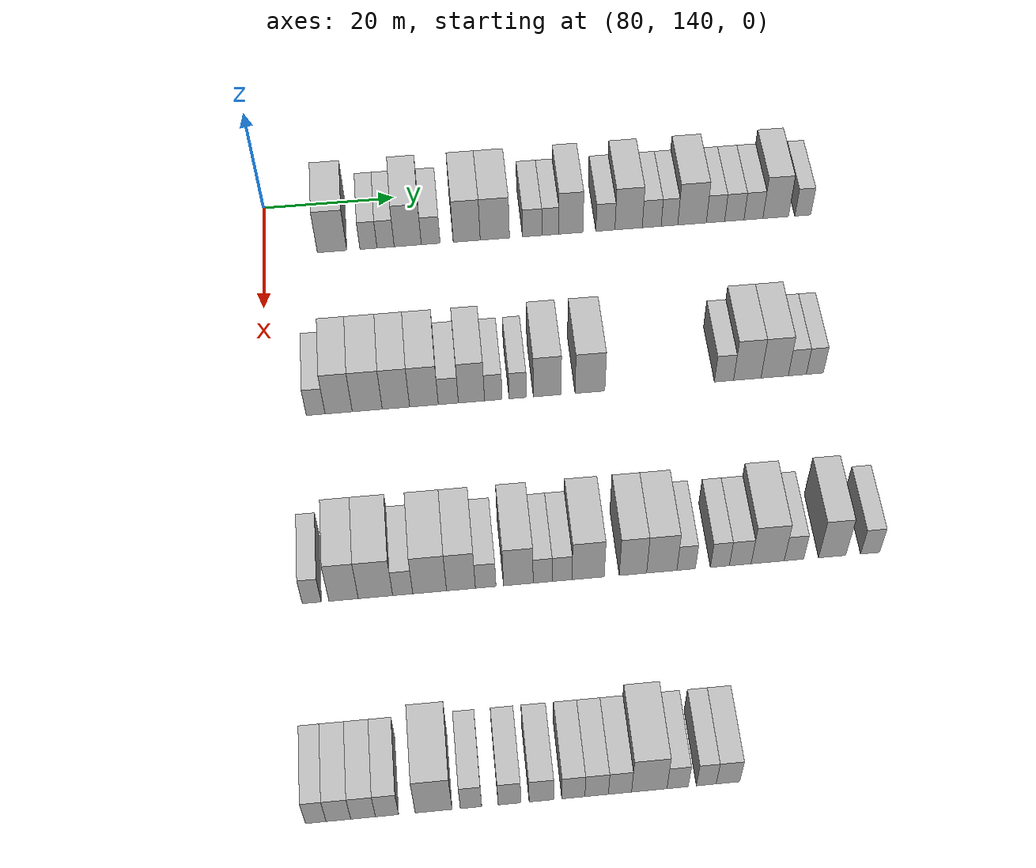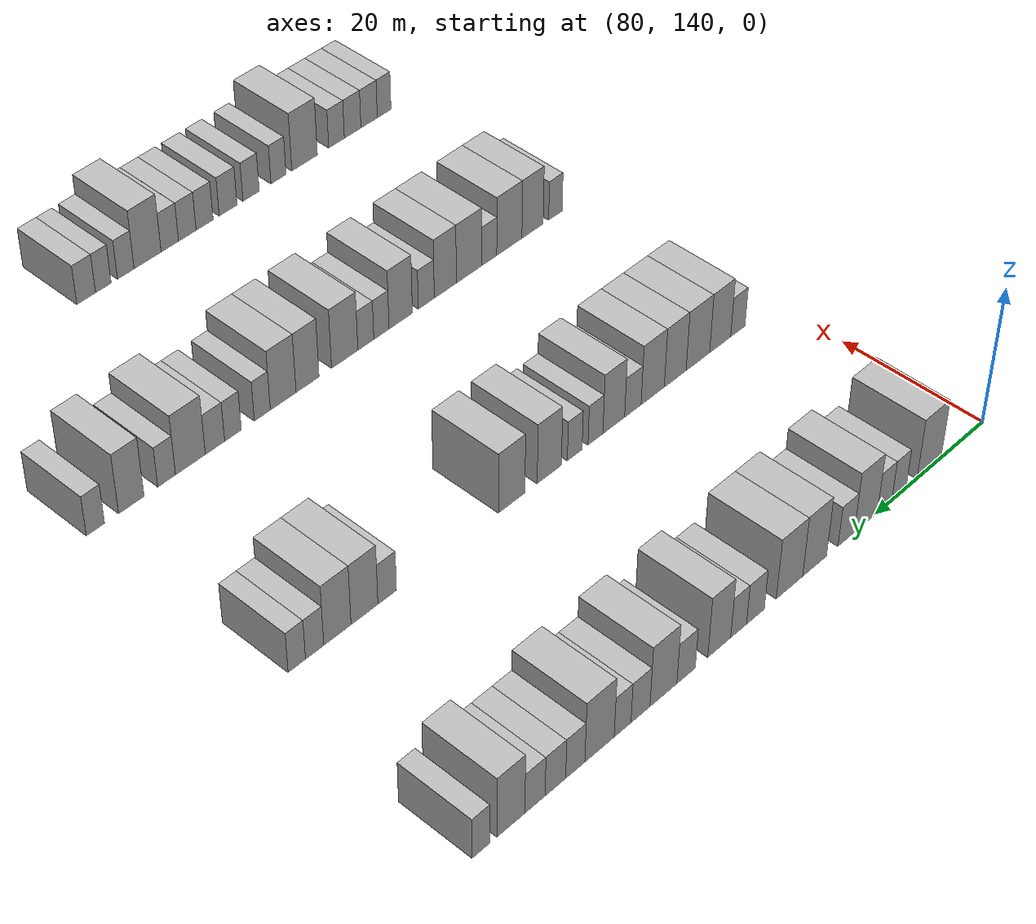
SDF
<sdf version="1.6">
 <world name="default">
  <model name="building_591">
   <static>1</static>
   <pose>85.0000 150.2574 0 0.000000 0.000000 0.000000</pose>
   <link name="link">
    <pose>0 0 4.50 0 0 0</pose>
    <collision name="collision"><geometry><box><size>10.0000 4.4377 9.0000</size></box></geometry></collision>
    <visual name="visual">
     <cast_shadows>0</cast_shadows>
     <geometry><box><size>10.0000 4.4377 9.0000</size></box></geometry>
     <material>
      <script>
       <uri>model://HANNAS_wall/materials/scripts</uri>
       <uri>model://HANNAS_wall/materials/textures</uri>
       <name>vrc/HANNAS_wall</name>
      </script>
     </material>
    </visual>
   </link>
  </model>
  <model name="building_592">
   <static>1</static>
   <pose>85.0000 155.7617 0 0.000000 0.000000 0.000000</pose>
   <link name="link">
    <pose>0 0 3.00 0 0 0</pose>
    <collision name="collision"><geometry><box><size>10.0000 2.5710 6.0000</size></box></geometry></collision>
    <visual name="visual">
     <cast_shadows>0</cast_shadows>
     <geometry><box><size>10.0000 2.5710 6.0000</size></box></geometry>
     <material>
      <script>
       <uri>model://HANNAS_wall/materials/scripts</uri>
       <uri>model://HANNAS_wall/materials/textures</uri>
       <name>vrc/HANNAS_wall</name>
      </script>
     </material>
    </visual>
   </link>
  </model>
  <model name="building_593">
   <static>1</static>
   <pose>85.0000 158.3479 0 0.000000 0.000000 0.000000</pose>
   <link name="link">
    <pose>0 0 3.00 0 0 0</pose>
    <collision name="collision"><geometry><box><size>10.0000 2.6015 6.0000</size></box></geometry></collision>
    <visual name="visual">
     <cast_shadows>0</cast_shadows>
     <geometry><box><size>10.0000 2.6015 6.0000</size></box></geometry>
     <material>
      <script>
       <uri>model://HANNAS_wall/materials/scripts</uri>
       <uri>model://HANNAS_wall/materials/textures</uri>
       <name>vrc/HANNAS_wall</name>
      </script>
     </material>
    </visual>
   </link>
  </model>
  <model name="building_594">
   <static>1</static>
   <pose>85.0000 161.6995 0 0.000000 0.000000 0.000000</pose>
   <link name="link">
    <pose>0 0 4.50 0 0 0</pose>
    <collision name="collision"><geometry><box><size>10.0000 4.1016 9.0000</size></box></geometry></collision>
    <visual name="visual">
     <cast_shadows>0</cast_shadows>
     <geometry><box><size>10.0000 4.1016 9.0000</size></box></geometry>
     <material>
      <script>
       <uri>model://HANNAS_wall/materials/scripts</uri>
       <uri>model://HANNAS_wall/materials/textures</uri>
       <name>vrc/HANNAS_wall</name>
      </script>
     </material>
    </visual>
   </link>
  </model>
  <model name="building_595">
   <static>1</static>
   <pose>85.0000 165.1764 0 0.000000 0.000000 0.000000</pose>
   <link name="link">
    <pose>0 0 3.00 0 0 0</pose>
    <collision name="collision"><geometry><box><size>10.0000 2.8522 6.0000</size></box></geometry></collision>
    <visual name="visual">
     <cast_shadows>0</cast_shadows>
     <geometry><box><size>10.0000 2.8522 6.0000</size></box></geometry>
     <material>
      <script>
       <uri>model://HANNAS_wall/materials/scripts</uri>
       <uri>model://HANNAS_wall/materials/textures</uri>
       <name>vrc/HANNAS_wall</name>
      </script>
     </material>
    </visual>
   </link>
  </model>
  <model name="building_596">
   <static>1</static>
   <pose>85.0000 170.6516 0 0.000000 0.000000 0.000000</pose>
   <link name="link">
    <pose>0 0 4.50 0 0 0</pose>
    <collision name="collision"><geometry><box><size>10.0000 4.0983 9.0000</size></box></geometry></collision>
    <visual name="visual">
     <cast_shadows>0</cast_shadows>
     <geometry><box><size>10.0000 4.0983 9.0000</size></box></geometry>
     <material>
      <script>
       <uri>model://HANNAS_wall/materials/scripts</uri>
       <uri>model://HANNAS_wall/materials/textures</uri>
       <name>vrc/HANNAS_wall</name>
      </script>
     </material>
    </visual>
   </link>
  </model>
  <model name="building_597">
   <static>1</static>
   <pose>85.0000 174.9315 0 0.000000 0.000000 0.000000</pose>
   <link name="link">
    <pose>0 0 4.50 0 0 0</pose>
    <collision name="collision"><geometry><box><size>10.0000 4.4615 9.0000</size></box></geometry></collision>
    <visual name="visual">
     <cast_shadows>0</cast_shadows>
     <geometry><box><size>10.0000 4.4615 9.0000</size></box></geometry>
     <material>
      <script>
       <uri>model://HANNAS_wall/materials/scripts</uri>
       <uri>model://HANNAS_wall/materials/textures</uri>
       <name>vrc/HANNAS_wall</name>
      </script>
     </material>
    </visual>
   </link>
  </model>
  <model name="building_598">
   <static>1</static>
   <pose>85.0000 180.6359 0 0.000000 0.000000 0.000000</pose>
   <link name="link">
    <pose>0 0 3.00 0 0 0</pose>
    <collision name="collision"><geometry><box><size>10.0000 2.9473 6.0000</size></box></geometry></collision>
    <visual name="visual">
     <cast_shadows>0</cast_shadows>
     <geometry><box><size>10.0000 2.9473 6.0000</size></box></geometry>
     <material>
      <script>
       <uri>model://HANNAS_wall/materials/scripts</uri>
       <uri>model://HANNAS_wall/materials/textures</uri>
       <name>vrc/HANNAS_wall</name>
      </script>
     </material>
    </visual>
   </link>
  </model>
  <model name="building_599">
   <static>1</static>
   <pose>85.0000 183.4014 0 0.000000 0.000000 0.000000</pose>
   <link name="link">
    <pose>0 0 3.00 0 0 0</pose>
    <collision name="collision"><geometry><box><size>10.0000 2.5837 6.0000</size></box></geometry></collision>
    <visual name="visual">
     <cast_shadows>0</cast_shadows>
     <geometry><box><size>10.0000 2.5837 6.0000</size></box></geometry>
     <material>
      <script>
       <uri>model://HANNAS_wall/materials/scripts</uri>
       <uri>model://HANNAS_wall/materials/textures</uri>
       <name>vrc/HANNAS_wall</name>
      </script>
     </material>
    </visual>
   </link>
  </model>
  <model name="building_600">
   <static>1</static>
   <pose>85.0000 186.5445 0 0.000000 0.000000 0.000000</pose>
   <link name="link">
    <pose>0 0 4.50 0 0 0</pose>
    <collision name="collision"><geometry><box><size>10.0000 3.7025 9.0000</size></box></geometry></collision>
    <visual name="visual">
     <cast_shadows>0</cast_shadows>
     <geometry><box><size>10.0000 3.7025 9.0000</size></box></geometry>
     <material>
      <script>
       <uri>model://HANNAS_wall/materials/scripts</uri>
       <uri>model://HANNAS_wall/materials/textures</uri>
       <name>vrc/HANNAS_wall</name>
      </script>
     </material>
    </visual>
   </link>
  </model>
  <model name="building_601">
   <static>1</static>
   <pose>85.0000 191.8550 0 0.000000 0.000000 0.000000</pose>
   <link name="link">
    <pose>0 0 3.00 0 0 0</pose>
    <collision name="collision"><geometry><box><size>10.0000 2.9185 6.0000</size></box></geometry></collision>
    <visual name="visual">
     <cast_shadows>0</cast_shadows>
     <geometry><box><size>10.0000 2.9185 6.0000</size></box></geometry>
     <material>
      <script>
       <uri>model://HANNAS_wall/materials/scripts</uri>
       <uri>model://HANNAS_wall/materials/textures</uri>
       <name>vrc/HANNAS_wall</name>
      </script>
     </material>
    </visual>
   </link>
  </model>
  <model name="building_602">
   <static>1</static>
   <pose>85.0000 195.4184 0 0.000000 0.000000 0.000000</pose>
   <link name="link">
    <pose>0 0 4.50 0 0 0</pose>
    <collision name="collision"><geometry><box><size>10.0000 4.2084 9.0000</size></box></geometry></collision>
    <visual name="visual">
     <cast_shadows>0</cast_shadows>
     <geometry><box><size>10.0000 4.2084 9.0000</size></box></geometry>
     <material>
      <script>
       <uri>model://HANNAS_wall/materials/scripts</uri>
       <uri>model://HANNAS_wall/materials/textures</uri>
       <name>vrc/HANNAS_wall</name>
      </script>
     </material>
    </visual>
   </link>
  </model>
  <model name="building_603">
   <static>1</static>
   <pose>85.0000 198.9815 0 0.000000 0.000000 0.000000</pose>
   <link name="link">
    <pose>0 0 3.00 0 0 0</pose>
    <collision name="collision"><geometry><box><size>10.0000 2.9178 6.0000</size></box></geometry></collision>
    <visual name="visual">
     <cast_shadows>0</cast_shadows>
     <geometry><box><size>10.0000 2.9178 6.0000</size></box></geometry>
     <material>
      <script>
       <uri>model://HANNAS_wall/materials/scripts</uri>
       <uri>model://HANNAS_wall/materials/textures</uri>
       <name>vrc/HANNAS_wall</name>
      </script>
     </material>
    </visual>
   </link>
  </model>
  <model name="building_604">
   <static>1</static>
   <pose>85.0000 201.7214 0 0.000000 0.000000 0.000000</pose>
   <link name="link">
    <pose>0 0 3.00 0 0 0</pose>
    <collision name="collision"><geometry><box><size>10.0000 2.5618 6.0000</size></box></geometry></collision>
    <visual name="visual">
     <cast_shadows>0</cast_shadows>
     <geometry><box><size>10.0000 2.5618 6.0000</size></box></geometry>
     <material>
      <script>
       <uri>model://HANNAS_wall/materials/scripts</uri>
       <uri>model://HANNAS_wall/materials/textures</uri>
       <name>vrc/HANNAS_wall</name>
      </script>
     </material>
    </visual>
   </link>
  </model>
  <model name="building_605">
   <static>1</static>
   <pose>85.0000 205.2070 0 0.000000 0.000000 0.000000</pose>
   <link name="link">
    <pose>0 0 4.50 0 0 0</pose>
    <collision name="collision"><geometry><box><size>10.0000 4.4094 9.0000</size></box></geometry></collision>
    <visual name="visual">
     <cast_shadows>0</cast_shadows>
     <geometry><box><size>10.0000 4.4094 9.0000</size></box></geometry>
     <material>
      <script>
       <uri>model://HANNAS_wall/materials/scripts</uri>
       <uri>model://HANNAS_wall/materials/textures</uri>
       <name>vrc/HANNAS_wall</name>
      </script>
     </material>
    </visual>
   </link>
  </model>
  <model name="building_606">
   <static>1</static>
   <pose>85.0000 208.8326 0 0.000000 0.000000 0.000000</pose>
   <link name="link">
    <pose>0 0 3.00 0 0 0</pose>
    <collision name="collision"><geometry><box><size>10.0000 2.8419 6.0000</size></box></geometry></collision>
    <visual name="visual">
     <cast_shadows>0</cast_shadows>
     <geometry><box><size>10.0000 2.8419 6.0000</size></box></geometry>
     <material>
      <script>
       <uri>model://HANNAS_wall/materials/scripts</uri>
       <uri>model://HANNAS_wall/materials/textures</uri>
       <name>vrc/HANNAS_wall</name>
      </script>
     </material>
    </visual>
   </link>
  </model>
  <model name="building_607">
   <static>1</static>
   <pose>85.0000 211.7533 0 0.000000 0.000000 0.000000</pose>
   <link name="link">
    <pose>0 0 3.00 0 0 0</pose>
    <collision name="collision"><geometry><box><size>10.0000 2.9997 6.0000</size></box></geometry></collision>
    <visual name="visual">
     <cast_shadows>0</cast_shadows>
     <geometry><box><size>10.0000 2.9997 6.0000</size></box></geometry>
     <material>
      <script>
       <uri>model://HANNAS_wall/materials/scripts</uri>
       <uri>model://HANNAS_wall/materials/textures</uri>
       <name>vrc/HANNAS_wall</name>
      </script>
     </material>
    </visual>
   </link>
  </model>
  <model name="building_608">
   <static>1</static>
   <pose>85.0000 214.7210 0 0.000000 0.000000 0.000000</pose>
   <link name="link">
    <pose>0 0 3.00 0 0 0</pose>
    <collision name="collision"><geometry><box><size>10.0000 2.9356 6.0000</size></box></geometry></collision>
    <visual name="visual">
     <cast_shadows>0</cast_shadows>
     <geometry><box><size>10.0000 2.9356 6.0000</size></box></geometry>
     <material>
      <script>
       <uri>model://HANNAS_wall/materials/scripts</uri>
       <uri>model://HANNAS_wall/materials/textures</uri>
       <name>vrc/HANNAS_wall</name>
      </script>
     </material>
    </visual>
   </link>
  </model>
  <model name="building_609">
   <static>1</static>
   <pose>85.0000 218.1767 0 0.000000 0.000000 0.000000</pose>
   <link name="link">
    <pose>0 0 4.50 0 0 0</pose>
    <collision name="collision"><geometry><box><size>10.0000 3.9759 9.0000</size></box></geometry></collision>
    <visual name="visual">
     <cast_shadows>0</cast_shadows>
     <geometry><box><size>10.0000 3.9759 9.0000</size></box></geometry>
     <material>
      <script>
       <uri>model://HANNAS_wall/materials/scripts</uri>
       <uri>model://HANNAS_wall/materials/textures</uri>
       <name>vrc/HANNAS_wall</name>
      </script>
     </material>
    </visual>
   </link>
  </model>
  <model name="building_610">
   <static>1</static>
   <pose>85.0000 222.4064 0 0.000000 0.000000 0.000000</pose>
   <link name="link">
    <pose>0 0 3.00 0 0 0</pose>
    <collision name="collision"><geometry><box><size>10.0000 2.4835 6.0000</size></box></geometry></collision>
    <visual name="visual">
     <cast_shadows>0</cast_shadows>
     <geometry><box><size>10.0000 2.4835 6.0000</size></box></geometry>
     <material>
      <script>
       <uri>model://HANNAS_wall/materials/scripts</uri>
       <uri>model://HANNAS_wall/materials/textures</uri>
       <name>vrc/HANNAS_wall</name>
      </script>
     </material>
    </visual>
   </link>
  </model>
  <model name="building_822">
   <static>1</static>
   <pose>115.0000 147.1738 0 0.000000 0.000000 0.000000</pose>
   <link name="link">
    <pose>0 0 3.00 0 0 0</pose>
    <collision name="collision"><geometry><box><size>10.0000 2.6315 6.0000</size></box></geometry></collision>
    <visual name="visual">
     <cast_shadows>0</cast_shadows>
     <geometry><box><size>10.0000 2.6315 6.0000</size></box></geometry>
     <material>
      <script>
       <uri>model://HANNAS_wall/materials/scripts</uri>
       <uri>model://HANNAS_wall/materials/textures</uri>
       <name>vrc/HANNAS_wall</name>
      </script>
     </material>
    </visual>
   </link>
  </model>
  <model name="building_823">
   <static>1</static>
   <pose>115.0000 150.4013 0 0.000000 0.000000 0.000000</pose>
   <link name="link">
    <pose>0 0 4.50 0 0 0</pose>
    <collision name="collision"><geometry><box><size>10.0000 3.8234 9.0000</size></box></geometry></collision>
    <visual name="visual">
     <cast_shadows>0</cast_shadows>
     <geometry><box><size>10.0000 3.8234 9.0000</size></box></geometry>
     <material>
      <script>
       <uri>model://HANNAS_wall/materials/scripts</uri>
       <uri>model://HANNAS_wall/materials/textures</uri>
       <name>vrc/HANNAS_wall</name>
      </script>
     </material>
    </visual>
   </link>
  </model>
  <model name="building_824">
   <static>1</static>
   <pose>115.0000 154.4237 0 0.000000 0.000000 0.000000</pose>
   <link name="link">
    <pose>0 0 4.50 0 0 0</pose>
    <collision name="collision"><geometry><box><size>10.0000 4.2214 9.0000</size></box></geometry></collision>
    <visual name="visual">
     <cast_shadows>0</cast_shadows>
     <geometry><box><size>10.0000 4.2214 9.0000</size></box></geometry>
     <material>
      <script>
       <uri>model://HANNAS_wall/materials/scripts</uri>
       <uri>model://HANNAS_wall/materials/textures</uri>
       <name>vrc/HANNAS_wall</name>
      </script>
     </material>
    </visual>
   </link>
  </model>
  <model name="building_825">
   <static>1</static>
   <pose>115.0000 158.4674 0 0.000000 0.000000 0.000000</pose>
   <link name="link">
    <pose>0 0 4.50 0 0 0</pose>
    <collision name="collision"><geometry><box><size>10.0000 3.8660 9.0000</size></box></geometry></collision>
    <visual name="visual">
     <cast_shadows>0</cast_shadows>
     <geometry><box><size>10.0000 3.8660 9.0000</size></box></geometry>
     <material>
      <script>
       <uri>model://HANNAS_wall/materials/scripts</uri>
       <uri>model://HANNAS_wall/materials/textures</uri>
       <name>vrc/HANNAS_wall</name>
      </script>
     </material>
    </visual>
   </link>
  </model>
  <model name="building_826">
   <static>1</static>
   <pose>115.0000 162.4238 0 0.000000 0.000000 0.000000</pose>
   <link name="link">
    <pose>0 0 4.50 0 0 0</pose>
    <collision name="collision"><geometry><box><size>10.0000 4.0468 9.0000</size></box></geometry></collision>
    <visual name="visual">
     <cast_shadows>0</cast_shadows>
     <geometry><box><size>10.0000 4.0468 9.0000</size></box></geometry>
     <material>
      <script>
       <uri>model://HANNAS_wall/materials/scripts</uri>
       <uri>model://HANNAS_wall/materials/textures</uri>
       <name>vrc/HANNAS_wall</name>
      </script>
     </material>
    </visual>
   </link>
  </model>
  <model name="building_827">
   <static>1</static>
   <pose>115.0000 165.8641 0 0.000000 0.000000 0.000000</pose>
   <link name="link">
    <pose>0 0 3.00 0 0 0</pose>
    <collision name="collision"><geometry><box><size>10.0000 2.8336 6.0000</size></box></geometry></collision>
    <visual name="visual">
     <cast_shadows>0</cast_shadows>
     <geometry><box><size>10.0000 2.8336 6.0000</size></box></geometry>
     <material>
      <script>
       <uri>model://HANNAS_wall/materials/scripts</uri>
       <uri>model://HANNAS_wall/materials/textures</uri>
       <name>vrc/HANNAS_wall</name>
      </script>
     </material>
    </visual>
   </link>
  </model>
  <model name="building_828">
   <static>1</static>
   <pose>115.0000 169.1370 0 0.000000 0.000000 0.000000</pose>
   <link name="link">
    <pose>0 0 4.50 0 0 0</pose>
    <collision name="collision"><geometry><box><size>10.0000 3.7123 9.0000</size></box></geometry></collision>
    <visual name="visual">
     <cast_shadows>0</cast_shadows>
     <geometry><box><size>10.0000 3.7123 9.0000</size></box></geometry>
     <material>
      <script>
       <uri>model://HANNAS_wall/materials/scripts</uri>
       <uri>model://HANNAS_wall/materials/textures</uri>
       <name>vrc/HANNAS_wall</name>
      </script>
     </material>
    </visual>
   </link>
  </model>
  <model name="building_829">
   <static>1</static>
   <pose>115.0000 172.2430 0 0.000000 0.000000 0.000000</pose>
   <link name="link">
    <pose>0 0 3.00 0 0 0</pose>
    <collision name="collision"><geometry><box><size>10.0000 2.4997 6.0000</size></box></geometry></collision>
    <visual name="visual">
     <cast_shadows>0</cast_shadows>
     <geometry><box><size>10.0000 2.4997 6.0000</size></box></geometry>
     <material>
      <script>
       <uri>model://HANNAS_wall/materials/scripts</uri>
       <uri>model://HANNAS_wall/materials/textures</uri>
       <name>vrc/HANNAS_wall</name>
      </script>
     </material>
    </visual>
   </link>
  </model>
  <model name="building_830">
   <static>1</static>
   <pose>115.0000 175.7149 0 0.000000 0.000000 0.000000</pose>
   <link name="link">
    <pose>0 0 3.00 0 0 0</pose>
    <collision name="collision"><geometry><box><size>10.0000 2.4441 6.0000</size></box></geometry></collision>
    <visual name="visual">
     <cast_shadows>0</cast_shadows>
     <geometry><box><size>10.0000 2.4441 6.0000</size></box></geometry>
     <material>
      <script>
       <uri>model://HANNAS_wall/materials/scripts</uri>
       <uri>model://HANNAS_wall/materials/textures</uri>
       <name>vrc/HANNAS_wall</name>
      </script>
     </material>
    </visual>
   </link>
  </model>
  <model name="building_831">
   <static>1</static>
   <pose>115.0000 179.9132 0 0.000000 0.000000 0.000000</pose>
   <link name="link">
    <pose>0 0 4.50 0 0 0</pose>
    <collision name="collision"><geometry><box><size>10.0000 3.9526 9.0000</size></box></geometry></collision>
    <visual name="visual">
     <cast_shadows>0</cast_shadows>
     <geometry><box><size>10.0000 3.9526 9.0000</size></box></geometry>
     <material>
      <script>
       <uri>model://HANNAS_wall/materials/scripts</uri>
       <uri>model://HANNAS_wall/materials/textures</uri>
       <name>vrc/HANNAS_wall</name>
      </script>
     </material>
    </visual>
   </link>
  </model>
  <model name="building_832">
   <static>1</static>
   <pose>115.0000 186.0097 0 0.000000 0.000000 0.000000</pose>
   <link name="link">
    <pose>0 0 4.50 0 0 0</pose>
    <collision name="collision"><geometry><box><size>10.0000 4.2403 9.0000</size></box></geometry></collision>
    <visual name="visual">
     <cast_shadows>0</cast_shadows>
     <geometry><box><size>10.0000 4.2403 9.0000</size></box></geometry>
     <material>
      <script>
       <uri>model://HANNAS_wall/materials/scripts</uri>
       <uri>model://HANNAS_wall/materials/textures</uri>
       <name>vrc/HANNAS_wall</name>
      </script>
     </material>
    </visual>
   </link>
  </model>
  <model name="building_833">
   <static>1</static>
   <pose>115.0000 205.2660 0 0.000000 0.000000 0.000000</pose>
   <link name="link">
    <pose>0 0 3.00 0 0 0</pose>
    <collision name="collision"><geometry><box><size>10.0000 2.7574 6.0000</size></box></geometry></collision>
    <visual name="visual">
     <cast_shadows>0</cast_shadows>
     <geometry><box><size>10.0000 2.7574 6.0000</size></box></geometry>
     <material>
      <script>
       <uri>model://HANNAS_wall/materials/scripts</uri>
       <uri>model://HANNAS_wall/materials/textures</uri>
       <name>vrc/HANNAS_wall</name>
      </script>
     </material>
    </visual>
   </link>
  </model>
  <model name="building_834">
   <static>1</static>
   <pose>115.0000 208.6268 0 0.000000 0.000000 0.000000</pose>
   <link name="link">
    <pose>0 0 4.50 0 0 0</pose>
    <collision name="collision"><geometry><box><size>10.0000 3.9642 9.0000</size></box></geometry></collision>
    <visual name="visual">
     <cast_shadows>0</cast_shadows>
     <geometry><box><size>10.0000 3.9642 9.0000</size></box></geometry>
     <material>
      <script>
       <uri>model://HANNAS_wall/materials/scripts</uri>
       <uri>model://HANNAS_wall/materials/textures</uri>
       <name>vrc/HANNAS_wall</name>
      </script>
     </material>
    </visual>
   </link>
  </model>
  <model name="building_835">
   <static>1</static>
   <pose>115.0000 212.5867 0 0.000000 0.000000 0.000000</pose>
   <link name="link">
    <pose>0 0 4.50 0 0 0</pose>
    <collision name="collision"><geometry><box><size>10.0000 3.9556 9.0000</size></box></geometry></collision>
    <visual name="visual">
     <cast_shadows>0</cast_shadows>
     <geometry><box><size>10.0000 3.9556 9.0000</size></box></geometry>
     <material>
      <script>
       <uri>model://HANNAS_wall/materials/scripts</uri>
       <uri>model://HANNAS_wall/materials/textures</uri>
       <name>vrc/HANNAS_wall</name>
      </script>
     </material>
    </visual>
   </link>
  </model>
  <model name="building_836">
   <static>1</static>
   <pose>115.0000 215.8741 0 0.000000 0.000000 0.000000</pose>
   <link name="link">
    <pose>0 0 3.00 0 0 0</pose>
    <collision name="collision"><geometry><box><size>10.0000 2.6192 6.0000</size></box></geometry></collision>
    <visual name="visual">
     <cast_shadows>0</cast_shadows>
     <geometry><box><size>10.0000 2.6192 6.0000</size></box></geometry>
     <material>
      <script>
       <uri>model://HANNAS_wall/materials/scripts</uri>
       <uri>model://HANNAS_wall/materials/textures</uri>
       <name>vrc/HANNAS_wall</name>
      </script>
     </material>
    </visual>
   </link>
  </model>
  <model name="building_837">
   <static>1</static>
   <pose>115.0000 218.4202 0 0.000000 0.000000 0.000000</pose>
   <link name="link">
    <pose>0 0 3.00 0 0 0</pose>
    <collision name="collision"><geometry><box><size>10.0000 2.4729 6.0000</size></box></geometry></collision>
    <visual name="visual">
     <cast_shadows>0</cast_shadows>
     <geometry><box><size>10.0000 2.4729 6.0000</size></box></geometry>
     <material>
      <script>
       <uri>model://HANNAS_wall/materials/scripts</uri>
       <uri>model://HANNAS_wall/materials/textures</uri>
       <name>vrc/HANNAS_wall</name>
      </script>
     </material>
    </visual>
   </link>
  </model>
  <model name="building_1052">
   <static>1</static>
   <pose>145.0000 146.0578 0 0.000000 0.000000 0.000000</pose>
   <link name="link">
    <pose>0 0 3.00 0 0 0</pose>
    <collision name="collision"><geometry><box><size>10.0000 2.4564 6.0000</size></box></geometry></collision>
    <visual name="visual">
     <cast_shadows>0</cast_shadows>
     <geometry><box><size>10.0000 2.4564 6.0000</size></box></geometry>
     <material>
      <script>
       <uri>model://HANNAS_wall/materials/scripts</uri>
       <uri>model://HANNAS_wall/materials/textures</uri>
       <name>vrc/HANNAS_wall</name>
      </script>
     </material>
    </visual>
   </link>
  </model>
  <model name="building_1053">
   <static>1</static>
   <pose>145.0000 150.1999 0 0.000000 0.000000 0.000000</pose>
   <link name="link">
    <pose>0 0 4.50 0 0 0</pose>
    <collision name="collision"><geometry><box><size>10.0000 3.8278 9.0000</size></box></geometry></collision>
    <visual name="visual">
     <cast_shadows>0</cast_shadows>
     <geometry><box><size>10.0000 3.8278 9.0000</size></box></geometry>
     <material>
      <script>
       <uri>model://HANNAS_wall/materials/scripts</uri>
       <uri>model://HANNAS_wall/materials/textures</uri>
       <name>vrc/HANNAS_wall</name>
      </script>
     </material>
    </visual>
   </link>
  </model>
  <model name="building_1054">
   <static>1</static>
   <pose>145.0000 154.3550 0 0.000000 0.000000 0.000000</pose>
   <link name="link">
    <pose>0 0 4.50 0 0 0</pose>
    <collision name="collision"><geometry><box><size>10.0000 4.4824 9.0000</size></box></geometry></collision>
    <visual name="visual">
     <cast_shadows>0</cast_shadows>
     <geometry><box><size>10.0000 4.4824 9.0000</size></box></geometry>
     <material>
      <script>
       <uri>model://HANNAS_wall/materials/scripts</uri>
       <uri>model://HANNAS_wall/materials/textures</uri>
       <name>vrc/HANNAS_wall</name>
      </script>
     </material>
    </visual>
   </link>
  </model>
  <model name="building_1055">
   <static>1</static>
   <pose>145.0000 157.9102 0 0.000000 0.000000 0.000000</pose>
   <link name="link">
    <pose>0 0 3.00 0 0 0</pose>
    <collision name="collision"><geometry><box><size>10.0000 2.6281 6.0000</size></box></geometry></collision>
    <visual name="visual">
     <cast_shadows>0</cast_shadows>
     <geometry><box><size>10.0000 2.6281 6.0000</size></box></geometry>
     <material>
      <script>
       <uri>model://HANNAS_wall/materials/scripts</uri>
       <uri>model://HANNAS_wall/materials/textures</uri>
       <name>vrc/HANNAS_wall</name>
      </script>
     </material>
    </visual>
   </link>
  </model>
  <model name="building_1056">
   <static>1</static>
   <pose>145.0000 161.4334 0 0.000000 0.000000 0.000000</pose>
   <link name="link">
    <pose>0 0 4.50 0 0 0</pose>
    <collision name="collision"><geometry><box><size>10.0000 4.4183 9.0000</size></box></geometry></collision>
    <visual name="visual">
     <cast_shadows>0</cast_shadows>
     <geometry><box><size>10.0000 4.4183 9.0000</size></box></geometry>
     <material>
      <script>
       <uri>model://HANNAS_wall/materials/scripts</uri>
       <uri>model://HANNAS_wall/materials/textures</uri>
       <name>vrc/HANNAS_wall</name>
      </script>
     </material>
    </visual>
   </link>
  </model>
  <model name="building_1057">
   <static>1</static>
   <pose>145.0000 165.5338 0 0.000000 0.000000 0.000000</pose>
   <link name="link">
    <pose>0 0 4.50 0 0 0</pose>
    <collision name="collision"><geometry><box><size>10.0000 3.7824 9.0000</size></box></geometry></collision>
    <visual name="visual">
     <cast_shadows>0</cast_shadows>
     <geometry><box><size>10.0000 3.7824 9.0000</size></box></geometry>
     <material>
      <script>
       <uri>model://HANNAS_wall/materials/scripts</uri>
       <uri>model://HANNAS_wall/materials/textures</uri>
       <name>vrc/HANNAS_wall</name>
      </script>
     </material>
    </visual>
   </link>
  </model>
  <model name="building_1058">
   <static>1</static>
   <pose>145.0000 168.7786 0 0.000000 0.000000 0.000000</pose>
   <link name="link">
    <pose>0 0 3.00 0 0 0</pose>
    <collision name="collision"><geometry><box><size>10.0000 2.7072 6.0000</size></box></geometry></collision>
    <visual name="visual">
     <cast_shadows>0</cast_shadows>
     <geometry><box><size>10.0000 2.7072 6.0000</size></box></geometry>
     <material>
      <script>
       <uri>model://HANNAS_wall/materials/scripts</uri>
       <uri>model://HANNAS_wall/materials/textures</uri>
       <name>vrc/HANNAS_wall</name>
      </script>
     </material>
    </visual>
   </link>
  </model>
  <model name="building_1059">
   <static>1</static>
   <pose>145.0000 173.0820 0 0.000000 0.000000 0.000000</pose>
   <link name="link">
    <pose>0 0 4.50 0 0 0</pose>
    <collision name="collision"><geometry><box><size>10.0000 3.8996 9.0000</size></box></geometry></collision>
    <visual name="visual">
     <cast_shadows>0</cast_shadows>
     <geometry><box><size>10.0000 3.8996 9.0000</size></box></geometry>
     <material>
      <script>
       <uri>model://HANNAS_wall/materials/scripts</uri>
       <uri>model://HANNAS_wall/materials/textures</uri>
       <name>vrc/HANNAS_wall</name>
      </script>
     </material>
    </visual>
   </link>
  </model>
  <model name="building_1060">
   <static>1</static>
   <pose>145.0000 176.2867 0 0.000000 0.000000 0.000000</pose>
   <link name="link">
    <pose>0 0 3.00 0 0 0</pose>
    <collision name="collision"><geometry><box><size>10.0000 2.5097 6.0000</size></box></geometry></collision>
    <visual name="visual">
     <cast_shadows>0</cast_shadows>
     <geometry><box><size>10.0000 2.5097 6.0000</size></box></geometry>
     <material>
      <script>
       <uri>model://HANNAS_wall/materials/scripts</uri>
       <uri>model://HANNAS_wall/materials/textures</uri>
       <name>vrc/HANNAS_wall</name>
      </script>
     </material>
    </visual>
   </link>
  </model>
  <model name="building_1061">
   <static>1</static>
   <pose>145.0000 178.8488 0 0.000000 0.000000 0.000000</pose>
   <link name="link">
    <pose>0 0 3.00 0 0 0</pose>
    <collision name="collision"><geometry><box><size>10.0000 2.6146 6.0000</size></box></geometry></collision>
    <visual name="visual">
     <cast_shadows>0</cast_shadows>
     <geometry><box><size>10.0000 2.6146 6.0000</size></box></geometry>
     <material>
      <script>
       <uri>model://HANNAS_wall/materials/scripts</uri>
       <uri>model://HANNAS_wall/materials/textures</uri>
       <name>vrc/HANNAS_wall</name>
      </script>
     </material>
    </visual>
   </link>
  </model>
  <model name="building_1062">
   <static>1</static>
   <pose>145.0000 182.2876 0 0.000000 0.000000 0.000000</pose>
   <link name="link">
    <pose>0 0 4.50 0 0 0</pose>
    <collision name="collision"><geometry><box><size>10.0000 4.2628 9.0000</size></box></geometry></collision>
    <visual name="visual">
     <cast_shadows>0</cast_shadows>
     <geometry><box><size>10.0000 4.2628 9.0000</size></box></geometry>
     <material>
      <script>
       <uri>model://HANNAS_wall/materials/scripts</uri>
       <uri>model://HANNAS_wall/materials/textures</uri>
       <name>vrc/HANNAS_wall</name>
      </script>
     </material>
    </visual>
   </link>
  </model>
  <model name="building_1063">
   <static>1</static>
   <pose>145.0000 188.2401 0 0.000000 0.000000 0.000000</pose>
   <link name="link">
    <pose>0 0 4.50 0 0 0</pose>
    <collision name="collision"><geometry><box><size>10.0000 3.6422 9.0000</size></box></geometry></collision>
    <visual name="visual">
     <cast_shadows>0</cast_shadows>
     <geometry><box><size>10.0000 3.6422 9.0000</size></box></geometry>
     <material>
      <script>
       <uri>model://HANNAS_wall/materials/scripts</uri>
       <uri>model://HANNAS_wall/materials/textures</uri>
       <name>vrc/HANNAS_wall</name>
      </script>
     </material>
    </visual>
   </link>
  </model>
  <model name="building_1064">
   <static>1</static>
   <pose>145.0000 192.0733 0 0.000000 0.000000 0.000000</pose>
   <link name="link">
    <pose>0 0 4.50 0 0 0</pose>
    <collision name="collision"><geometry><box><size>10.0000 4.0242 9.0000</size></box></geometry></collision>
    <visual name="visual">
     <cast_shadows>0</cast_shadows>
     <geometry><box><size>10.0000 4.0242 9.0000</size></box></geometry>
     <material>
      <script>
       <uri>model://HANNAS_wall/materials/scripts</uri>
       <uri>model://HANNAS_wall/materials/textures</uri>
       <name>vrc/HANNAS_wall</name>
      </script>
     </material>
    </visual>
   </link>
  </model>
  <model name="building_1065">
   <static>1</static>
   <pose>145.0000 195.3196 0 0.000000 0.000000 0.000000</pose>
   <link name="link">
    <pose>0 0 3.00 0 0 0</pose>
    <collision name="collision"><geometry><box><size>10.0000 2.4684 6.0000</size></box></geometry></collision>
    <visual name="visual">
     <cast_shadows>0</cast_shadows>
     <geometry><box><size>10.0000 2.4684 6.0000</size></box></geometry>
     <material>
      <script>
       <uri>model://HANNAS_wall/materials/scripts</uri>
       <uri>model://HANNAS_wall/materials/textures</uri>
       <name>vrc/HANNAS_wall</name>
      </script>
     </material>
    </visual>
   </link>
  </model>
  <model name="building_1066">
   <static>1</static>
   <pose>145.0000 199.8231 0 0.000000 0.000000 0.000000</pose>
   <link name="link">
    <pose>0 0 3.00 0 0 0</pose>
    <collision name="collision"><geometry><box><size>10.0000 2.5386 6.0000</size></box></geometry></collision>
    <visual name="visual">
     <cast_shadows>0</cast_shadows>
     <geometry><box><size>10.0000 2.5386 6.0000</size></box></geometry>
     <material>
      <script>
       <uri>model://HANNAS_wall/materials/scripts</uri>
       <uri>model://HANNAS_wall/materials/textures</uri>
       <name>vrc/HANNAS_wall</name>
      </script>
     </material>
    </visual>
   </link>
  </model>
  <model name="building_1067">
   <static>1</static>
   <pose>145.0000 202.5466 0 0.000000 0.000000 0.000000</pose>
   <link name="link">
    <pose>0 0 3.00 0 0 0</pose>
    <collision name="collision"><geometry><box><size>10.0000 2.9083 6.0000</size></box></geometry></collision>
    <visual name="visual">
     <cast_shadows>0</cast_shadows>
     <geometry><box><size>10.0000 2.9083 6.0000</size></box></geometry>
     <material>
      <script>
       <uri>model://HANNAS_wall/materials/scripts</uri>
       <uri>model://HANNAS_wall/materials/textures</uri>
       <name>vrc/HANNAS_wall</name>
      </script>
     </material>
    </visual>
   </link>
  </model>
  <model name="building_1068">
   <static>1</static>
   <pose>145.0000 206.2228 0 0.000000 0.000000 0.000000</pose>
   <link name="link">
    <pose>0 0 4.50 0 0 0</pose>
    <collision name="collision"><geometry><box><size>10.0000 4.4441 9.0000</size></box></geometry></collision>
    <visual name="visual">
     <cast_shadows>0</cast_shadows>
     <geometry><box><size>10.0000 4.4441 9.0000</size></box></geometry>
     <material>
      <script>
       <uri>model://HANNAS_wall/materials/scripts</uri>
       <uri>model://HANNAS_wall/materials/textures</uri>
       <name>vrc/HANNAS_wall</name>
      </script>
     </material>
    </visual>
   </link>
  </model>
  <model name="building_1069">
   <static>1</static>
   <pose>145.0000 209.7507 0 0.000000 0.000000 0.000000</pose>
   <link name="link">
    <pose>0 0 3.00 0 0 0</pose>
    <collision name="collision"><geometry><box><size>10.0000 2.6118 6.0000</size></box></geometry></collision>
    <visual name="visual">
     <cast_shadows>0</cast_shadows>
     <geometry><box><size>10.0000 2.6118 6.0000</size></box></geometry>
     <material>
      <script>
       <uri>model://HANNAS_wall/materials/scripts</uri>
       <uri>model://HANNAS_wall/materials/textures</uri>
       <name>vrc/HANNAS_wall</name>
      </script>
     </material>
    </visual>
   </link>
  </model>
  <model name="building_1070">
   <static>1</static>
   <pose>145.0000 214.8923 0 0.000000 0.000000 0.000000</pose>
   <link name="link">
    <pose>0 0 4.50 0 0 0</pose>
    <collision name="collision"><geometry><box><size>10.0000 3.6712 9.0000</size></box></geometry></collision>
    <visual name="visual">
     <cast_shadows>0</cast_shadows>
     <geometry><box><size>10.0000 3.6712 9.0000</size></box></geometry>
     <material>
      <script>
       <uri>model://HANNAS_wall/materials/scripts</uri>
       <uri>model://HANNAS_wall/materials/textures</uri>
       <name>vrc/HANNAS_wall</name>
      </script>
     </material>
    </visual>
   </link>
  </model>
  <model name="building_1071">
   <static>1</static>
   <pose>145.0000 220.0190 0 0.000000 0.000000 0.000000</pose>
   <link name="link">
    <pose>0 0 3.00 0 0 0</pose>
    <collision name="collision"><geometry><box><size>10.0000 2.5822 6.0000</size></box></geometry></collision>
    <visual name="visual">
     <cast_shadows>0</cast_shadows>
     <geometry><box><size>10.0000 2.5822 6.0000</size></box></geometry>
     <material>
      <script>
       <uri>model://HANNAS_wall/materials/scripts</uri>
       <uri>model://HANNAS_wall/materials/textures</uri>
       <name>vrc/HANNAS_wall</name>
      </script>
     </material>
    </visual>
   </link>
  </model>
  <model name="building_1286">
   <static>1</static>
   <pose>175.0000 145.9596 0 0.000000 0.000000 0.000000</pose>
   <link name="link">
    <pose>0 0 3.00 0 0 0</pose>
    <collision name="collision"><geometry><box><size>10.0000 2.4813 6.0000</size></box></geometry></collision>
    <visual name="visual">
     <cast_shadows>0</cast_shadows>
     <geometry><box><size>10.0000 2.4813 6.0000</size></box></geometry>
     <material>
      <script>
       <uri>model://HANNAS_wall/materials/scripts</uri>
       <uri>model://HANNAS_wall/materials/textures</uri>
       <name>vrc/HANNAS_wall</name>
      </script>
     </material>
    </visual>
   </link>
  </model>
  <model name="building_1287">
   <static>1</static>
   <pose>175.0000 148.6776 0 0.000000 0.000000 0.000000</pose>
   <link name="link">
    <pose>0 0 3.00 0 0 0</pose>
    <collision name="collision"><geometry><box><size>10.0000 2.9548 6.0000</size></box></geometry></collision>
    <visual name="visual">
     <cast_shadows>0</cast_shadows>
     <geometry><box><size>10.0000 2.9548 6.0000</size></box></geometry>
     <material>
      <script>
       <uri>model://HANNAS_wall/materials/scripts</uri>
       <uri>model://HANNAS_wall/materials/textures</uri>
       <name>vrc/HANNAS_wall</name>
      </script>
     </material>
    </visual>
   </link>
  </model>
  <model name="building_1288">
   <static>1</static>
   <pose>175.0000 151.6375 0 0.000000 0.000000 0.000000</pose>
   <link name="link">
    <pose>0 0 3.00 0 0 0</pose>
    <collision name="collision"><geometry><box><size>10.0000 2.9650 6.0000</size></box></geometry></collision>
    <visual name="visual">
     <cast_shadows>0</cast_shadows>
     <geometry><box><size>10.0000 2.9650 6.0000</size></box></geometry>
     <material>
      <script>
       <uri>model://HANNAS_wall/materials/scripts</uri>
       <uri>model://HANNAS_wall/materials/textures</uri>
       <name>vrc/HANNAS_wall</name>
      </script>
     </material>
    </visual>
   </link>
  </model>
  <model name="building_1289">
   <static>1</static>
   <pose>175.0000 154.5062 0 0.000000 0.000000 0.000000</pose>
   <link name="link">
    <pose>0 0 3.00 0 0 0</pose>
    <collision name="collision"><geometry><box><size>10.0000 2.7723 6.0000</size></box></geometry></collision>
    <visual name="visual">
     <cast_shadows>0</cast_shadows>
     <geometry><box><size>10.0000 2.7723 6.0000</size></box></geometry>
     <material>
      <script>
       <uri>model://HANNAS_wall/materials/scripts</uri>
       <uri>model://HANNAS_wall/materials/textures</uri>
       <name>vrc/HANNAS_wall</name>
      </script>
     </material>
    </visual>
   </link>
  </model>
  <model name="building_1290">
   <static>1</static>
   <pose>175.0000 160.1144 0 0.000000 0.000000 0.000000</pose>
   <link name="link">
    <pose>0 0 4.50 0 0 0</pose>
    <collision name="collision"><geometry><box><size>10.0000 4.4441 9.0000</size></box></geometry></collision>
    <visual name="visual">
     <cast_shadows>0</cast_shadows>
     <geometry><box><size>10.0000 4.4441 9.0000</size></box></geometry>
     <material>
      <script>
       <uri>model://HANNAS_wall/materials/scripts</uri>
       <uri>model://HANNAS_wall/materials/textures</uri>
       <name>vrc/HANNAS_wall</name>
      </script>
     </material>
    </visual>
   </link>
  </model>
  <model name="building_1291">
   <static>1</static>
   <pose>175.0000 164.6281 0 0.000000 0.000000 0.000000</pose>
   <link name="link">
    <pose>0 0 3.00 0 0 0</pose>
    <collision name="collision"><geometry><box><size>10.0000 2.5832 6.0000</size></box></geometry></collision>
    <visual name="visual">
     <cast_shadows>0</cast_shadows>
     <geometry><box><size>10.0000 2.5832 6.0000</size></box></geometry>
     <material>
      <script>
       <uri>model://HANNAS_wall/materials/scripts</uri>
       <uri>model://HANNAS_wall/materials/textures</uri>
       <name>vrc/HANNAS_wall</name>
      </script>
     </material>
    </visual>
   </link>
  </model>
  <model name="building_1292">
   <static>1</static>
   <pose>175.0000 169.2944 0 0.000000 0.000000 0.000000</pose>
   <link name="link">
    <pose>0 0 3.00 0 0 0</pose>
    <collision name="collision"><geometry><box><size>10.0000 2.7495 6.0000</size></box></geometry></collision>
    <visual name="visual">
     <cast_shadows>0</cast_shadows>
     <geometry><box><size>10.0000 2.7495 6.0000</size></box></geometry>
     <material>
      <script>
       <uri>model://HANNAS_wall/materials/scripts</uri>
       <uri>model://HANNAS_wall/materials/textures</uri>
       <name>vrc/HANNAS_wall</name>
      </script>
     </material>
    </visual>
   </link>
  </model>
  <model name="building_1293">
   <static>1</static>
   <pose>175.0000 173.1534 0 0.000000 0.000000 0.000000</pose>
   <link name="link">
    <pose>0 0 3.00 0 0 0</pose>
    <collision name="collision"><geometry><box><size>10.0000 2.9683 6.0000</size></box></geometry></collision>
    <visual name="visual">
     <cast_shadows>0</cast_shadows>
     <geometry><box><size>10.0000 2.9683 6.0000</size></box></geometry>
     <material>
      <script>
       <uri>model://HANNAS_wall/materials/scripts</uri>
       <uri>model://HANNAS_wall/materials/textures</uri>
       <name>vrc/HANNAS_wall</name>
      </script>
     </material>
    </visual>
   </link>
  </model>
  <model name="building_1294">
   <static>1</static>
   <pose>175.0000 177.0441 0 0.000000 0.000000 0.000000</pose>
   <link name="link">
    <pose>0 0 3.00 0 0 0</pose>
    <collision name="collision"><geometry><box><size>10.0000 2.8132 6.0000</size></box></geometry></collision>
    <visual name="visual">
     <cast_shadows>0</cast_shadows>
     <geometry><box><size>10.0000 2.8132 6.0000</size></box></geometry>
     <material>
      <script>
       <uri>model://HANNAS_wall/materials/scripts</uri>
       <uri>model://HANNAS_wall/materials/textures</uri>
       <name>vrc/HANNAS_wall</name>
      </script>
     </material>
    </visual>
   </link>
  </model>
  <model name="building_1295">
   <static>1</static>
   <pose>175.0000 179.8847 0 0.000000 0.000000 0.000000</pose>
   <link name="link">
    <pose>0 0 3.00 0 0 0</pose>
    <collision name="collision"><geometry><box><size>10.0000 2.8680 6.0000</size></box></geometry></collision>
    <visual name="visual">
     <cast_shadows>0</cast_shadows>
     <geometry><box><size>10.0000 2.8680 6.0000</size></box></geometry>
     <material>
      <script>
       <uri>model://HANNAS_wall/materials/scripts</uri>
       <uri>model://HANNAS_wall/materials/textures</uri>
       <name>vrc/HANNAS_wall</name>
      </script>
     </material>
    </visual>
   </link>
  </model>
  <model name="building_1296">
   <static>1</static>
   <pose>175.0000 182.7299 0 0.000000 0.000000 0.000000</pose>
   <link name="link">
    <pose>0 0 3.00 0 0 0</pose>
    <collision name="collision"><geometry><box><size>10.0000 2.8223 6.0000</size></box></geometry></collision>
    <visual name="visual">
     <cast_shadows>0</cast_shadows>
     <geometry><box><size>10.0000 2.8223 6.0000</size></box></geometry>
     <material>
      <script>
       <uri>model://HANNAS_wall/materials/scripts</uri>
       <uri>model://HANNAS_wall/materials/textures</uri>
       <name>vrc/HANNAS_wall</name>
      </script>
     </material>
    </visual>
   </link>
  </model>
  <model name="building_1297">
   <static>1</static>
   <pose>175.0000 186.3050 0 0.000000 0.000000 0.000000</pose>
   <link name="link">
    <pose>0 0 4.50 0 0 0</pose>
    <collision name="collision"><geometry><box><size>10.0000 4.3279 9.0000</size></box></geometry></collision>
    <visual name="visual">
     <cast_shadows>0</cast_shadows>
     <geometry><box><size>10.0000 4.3279 9.0000</size></box></geometry>
     <material>
      <script>
       <uri>model://HANNAS_wall/materials/scripts</uri>
       <uri>model://HANNAS_wall/materials/textures</uri>
       <name>vrc/HANNAS_wall</name>
      </script>
     </material>
    </visual>
   </link>
  </model>
  <model name="building_1298">
   <static>1</static>
   <pose>175.0000 189.7758 0 0.000000 0.000000 0.000000</pose>
   <link name="link">
    <pose>0 0 3.00 0 0 0</pose>
    <collision name="collision"><geometry><box><size>10.0000 2.6137 6.0000</size></box></geometry></collision>
    <visual name="visual">
     <cast_shadows>0</cast_shadows>
     <geometry><box><size>10.0000 2.6137 6.0000</size></box></geometry>
     <material>
      <script>
       <uri>model://HANNAS_wall/materials/scripts</uri>
       <uri>model://HANNAS_wall/materials/textures</uri>
       <name>vrc/HANNAS_wall</name>
      </script>
     </material>
    </visual>
   </link>
  </model>
  <model name="building_1299">
   <static>1</static>
   <pose>175.0000 193.3033 0 0.000000 0.000000 0.000000</pose>
   <link name="link">
    <pose>0 0 3.00 0 0 0</pose>
    <collision name="collision"><geometry><box><size>10.0000 2.4413 6.0000</size></box></geometry></collision>
    <visual name="visual">
     <cast_shadows>0</cast_shadows>
     <geometry><box><size>10.0000 2.4413 6.0000</size></box></geometry>
     <material>
      <script>
       <uri>model://HANNAS_wall/materials/scripts</uri>
       <uri>model://HANNAS_wall/materials/textures</uri>
       <name>vrc/HANNAS_wall</name>
      </script>
     </material>
    </visual>
   </link>
  </model>
  <model name="building_1300">
   <static>1</static>
   <pose>175.0000 195.9752 0 0.000000 0.000000 0.000000</pose>
   <link name="link">
    <pose>0 0 3.00 0 0 0</pose>
    <collision name="collision"><geometry><box><size>10.0000 2.9024 6.0000</size></box></geometry></collision>
    <visual name="visual">
     <cast_shadows>0</cast_shadows>
     <geometry><box><size>10.0000 2.9024 6.0000</size></box></geometry>
     <material>
      <script>
       <uri>model://HANNAS_wall/materials/scripts</uri>
       <uri>model://HANNAS_wall/materials/textures</uri>
       <name>vrc/HANNAS_wall</name>
      </script>
     </material>
    </visual>
   </link>
  </model>
 </world>
</sdf>
